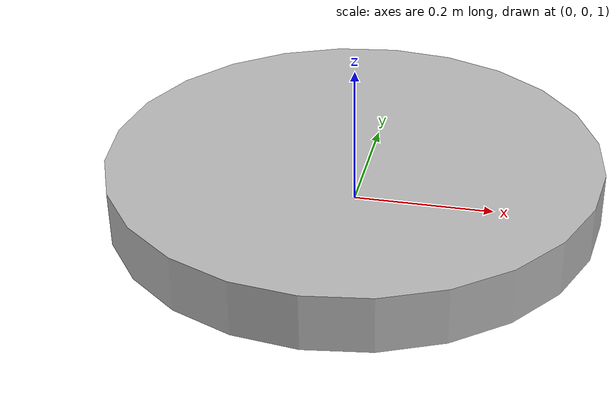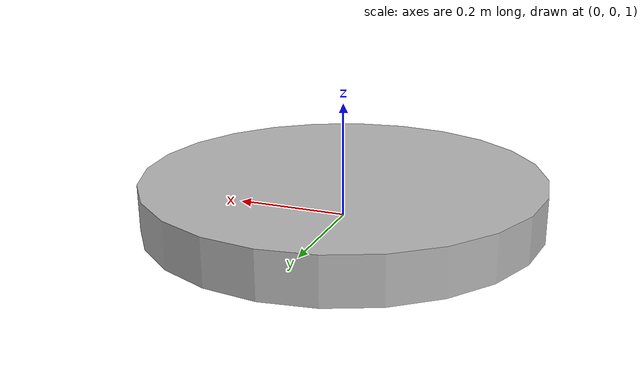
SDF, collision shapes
<?xml version="1.0"?>
<sdf version="1.4">

  <model name="hummingbird">

    <!-- Will the physics engine move this platform -->
    <static>false</static>

    <!-- Initial pose -->
    <pose>0 0 1  0 0 0</pose>

    <!-- Frame -->
    <link name="body">
      <pose>0 0 0  0 0 0</pose>
      <inertial>
        <mass>1.680</mass>
      </inertial>
      <collision name="body_collision">
        <pose>0 0 0.035 0 0 0</pose>
        <geometry>
          <cylinder>
            <radius>.35</radius>
            <length>.08</length>
          </cylinder>
        </geometry>
      </collision>
      <visual name="body_visual">
        <pose>0 0 0 0 0 0</pose>
        <geometry>
          <mesh>
            <uri>model://hummingbird/meshes/hummingbird.dae</uri>
          </mesh>
        </geometry>
      </visual>
    </link>

    <include>
      <uri>model://blade</uri>
      <name>blade0</name>
      <pose>0.241 0.0 0.05 0 0 0</pose>
    </include>
    <joint name="motor0" type="revolute">
      <parent>body</parent>
      <child>blade0::blade_link</child>
      <axis>
        <xyz>0 0 1</xyz>
      </axis>
    </joint>

    <include>
      <uri>model://blade</uri>
      <name>blade1</name>
      <pose>-0.241 0.0 0.05 0 0 0</pose>
    </include>
    <joint name="motor1" type="revolute">
      <parent>body</parent>
      <child>blade1::blade_link</child>
      <axis>
        <xyz>0 0 1</xyz>
      </axis>
    </joint>

    <include>
      <uri>model://blade</uri>
      <name>blade2</name>
      <pose>0.0 -0.241 0.05 0 0 0</pose>
    </include>
    <joint name="motor2" type="revolute">
      <parent>body</parent>
      <child>blade2::blade_link</child>
      <axis>
        <xyz>0 0 -1</xyz>
      </axis>
    </joint>

    <include>
      <uri>model://blade</uri>
      <name>blade3</name>
      <pose>0.0 0.241 0.05 0 0 0</pose>
    </include>
    <joint name="motor3" type="revolute">
      <parent>body</parent>
      <child>blade3::blade_link</child>
      <axis>
        <xyz>0 0 -1</xyz>
      </axis>
    </joint>

    <!-- Provides a model for a quadrotor -->
    <plugin name="quadrotor" filename="libquadrotor.so">

      <!-- Propulsion model -->
      <propulsion>

        <!-- Dynamics -->
        <dynamics>
          <low_throttle>300</low_throttle>
          <max_angvel>2.617993877991494</max_angvel>
          <pq0>-3.25060e-04</pq0>
          <pq1>1.79797e+02</pq1>
          <pq2>-24.3536</pq2>
          <r0>-4.81783e-03</r0>
          <r1>-5.08944</r1>
          <Cth0>6.63881e-01</Cth0>
          <Cth1>7.44649e-04</Cth1>
          <Cth2>2.39855e-06</Cth2>
          <Cvb0>-18.0007</Cvb0>
          <Cvb1>4.23754</Cvb1>
          <tau0>3.07321</tau0>
          <tau1>46.8004</tau1>
          <kuv>-4.97391e-01</kuv>
          <kw>-1.35341</kw>
        </dynamics>

        <!-- Control -->
        <control>
          <pitch>
            <scale>-2291.83118052329</scale>
            <min>-0.9</min>
            <max> 0.9</max>
          </pitch>
          <roll>
            <scale>-2291.83118052329</scale>
            <min>-0.9</min>
            <max> 0.9</max>
          </roll>
          <throttle>
            <scale>4097</scale>
            <min>0.0</min>
            <max>1.0</max>
          </throttle>
          <yaw>
            <scale>-460.597254433196</scale>
            <min>-4.5</min>
            <max> 4.5</max>
          </yaw>
          <voltage>
            <scale>1.0</scale>
            <min> 9.0</min>
            <max>12.0</max>
          </voltage>
        </control>

      </propulsion>

      <!-- Shear  -->
      <shear>
        <speed>0.0</speed>
        <direction>90</direction>
        <drag>
          <kuv>-4.97391e-01</kuv>
          <kw>-1.35341</kw>
        </drag>
        <floor>0.05</floor>
        <const>0.15</const>
      </shear>

      <!-- Turbulence  -->
      <turbulence>
        <speed>5.0</speed>
        <direction>90.0</direction>
        <drag>
          <kuv>-4.97391e-01</kuv>
          <kw>-1.35341</kw>
        </drag>
        <bsiter>1000</bsiter>
        <bstime>0.02</bstime>
      </turbulence>

      <!-- AHRS (orientation)  -->
      <ahrs>

        <!-- Data devlivery rate to ROS topic /hal/UAV/XXX/sensor/ahrs, 0 = off -->
        <rate>8</rate>

      </ahrs>

      <!-- Altimeter -->
      <altimeter>

        <!-- Data devlicery rate to ROS topic /hal/UAV/XXX/sensor/altimeter, 0 = off -->
        <rate>8</rate>

      </altimeter>

      <!-- Compass -->
      <compass>

        <!-- Data devlivery rate to ROS topic /hal/UAV/XXX/sensor/compass, 0 = off -->
        <rate>8</rate>

      </compass>

      <!-- Energy -->
      <energy>

        <!-- Data delivery rate to ROS topic /hal/UAV/XXX/sensor/battery, 0 = off -->
        <rate>8</rate>

        <total>2.2</total>
        <remaining>2.2</remaining>
        <consumption>
          <base>0.2</base>
          <flight>6.6</flight>
        </consumption>
        <limits>
          <kill>0.1</kill>
          <warn>0.2</warn>
        </limits>
        <throttle>0.001</throttle>
      </energy>

      <!-- GNSS receiver (imporatantly, it will be assumed that there is a very short -->
      <!-- baseline between the platforms, to correct ionosphere and troposphere del) -->
      <gnss>

        <!-- Data devlivery rate to ROS topic /hal/UAV/XXX/sensor/gnss, 0 = off -->
        <rate>8</rate>

        <!-- GPS support (negative errors = from REAL data, 0 = no error) -->
        <gps>
          <signal>L1</signal>   <!-- L1, L2, DUAL, DISABLED -->
          <corrections>         <!--ERROR = BROADCAST - FINAL -->
            <sig>0.0</sig>      <!--Signal tracking error -->
            <clk>0.0</clk>      <!--Satellite clock error -->
            <rel>0.0</rel>      <!--Relativity error -->
            <rot>0.0</rot>      <!--Earth rotation error -->
            <eph>0.0</eph>      <!--Satellite ephemeris error -->
            <tro>0.0</tro>      <!--Troposphere error error -->
            <ion>0.0</ion>      <!--Ionosphere error -->
          </corrections>
        </gps>

        <!-- Glonass support (negative errors = from REAL data, 0 = no error) -->
        <glonass>
          <signal>DISABLED</signal> <!--L1O, L2O, DUAL, DISABLED -->
          <corrections>         <!--ERROR = BROADCAST - FINAL -->
            <sig>0.0</sig>      <!--Signal tracking error -->
            <clk>0.0</clk>      <!--Satellite clock error -->
            <rel>0.0</rel>      <!--Relativity error -->
            <rot>0.0</rot>      <!--Earth rotation error -->
            <eph>0.0</eph>      <!--Satellite ephemeris error -->
            <tro>0.0</tro>      <!--Troposphere error error -->
            <ion>0.0</ion>      <!--Ionosphere error -->
          </corrections>
        </glonass>

      </gnss>

      <!-- Inertial measurement unit -->
      <imu>

        <!-- Data devlivery rate to ROS topic /hal/UAV/XXX/sensor/imu, 0 = off -->
        <rate>128</rate>

      </imu>

    </plugin>

  </model>

</sdf>

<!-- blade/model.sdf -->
<sdf version="1.4">

  <model name="blade">

    <!-- Will the physics engine move this platform -->
    <static>true</static>

    <link name="blade_link">

      <gravity>false</gravity>

      <collision name="blade_collision">
        <pose>0 0 0 0 0 0</pose>
        <geometry>
          <cylinder>
            <radius>.10</radius>
            <length>.02</length>
          </cylinder>
        </geometry>
      </collision>

      <visual name="blade_visual">
        <pose>0 0 0 0 0 0</pose>
        <geometry>
          <mesh>
            <uri>model://blade/meshes/blade.dae</uri>
          </mesh>
        </geometry>
      </visual>

    </link>

  </model>

</sdf>
